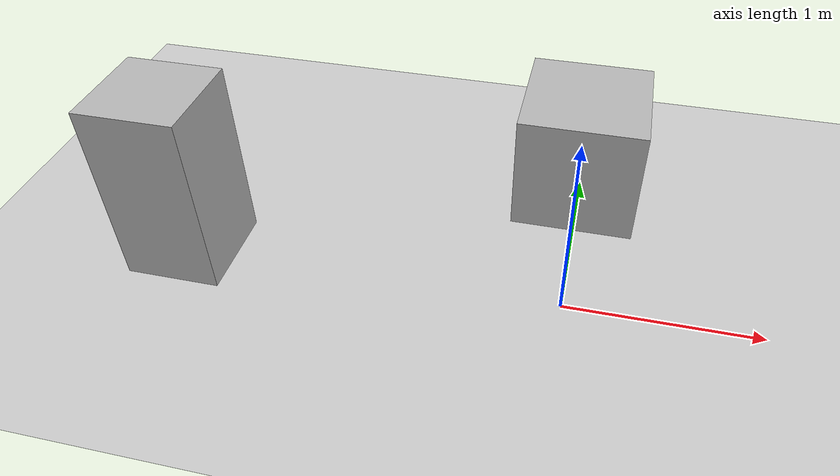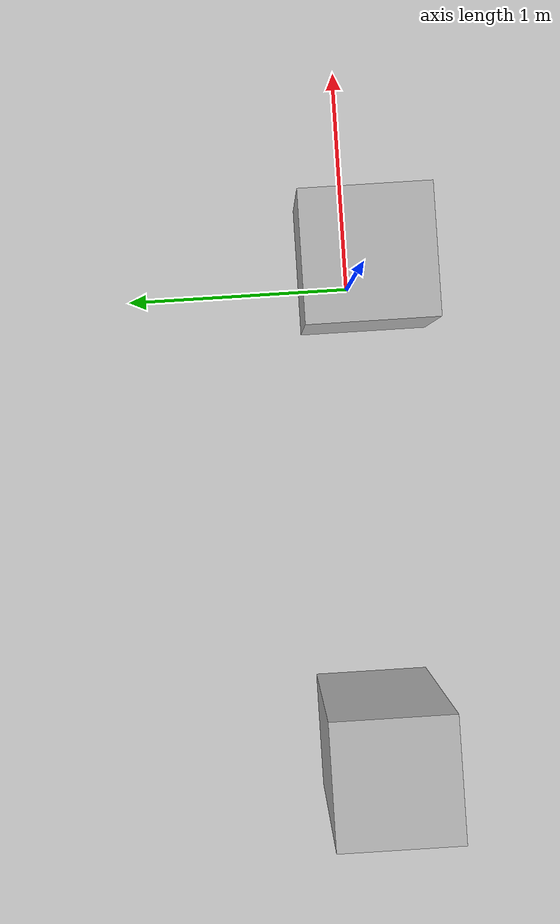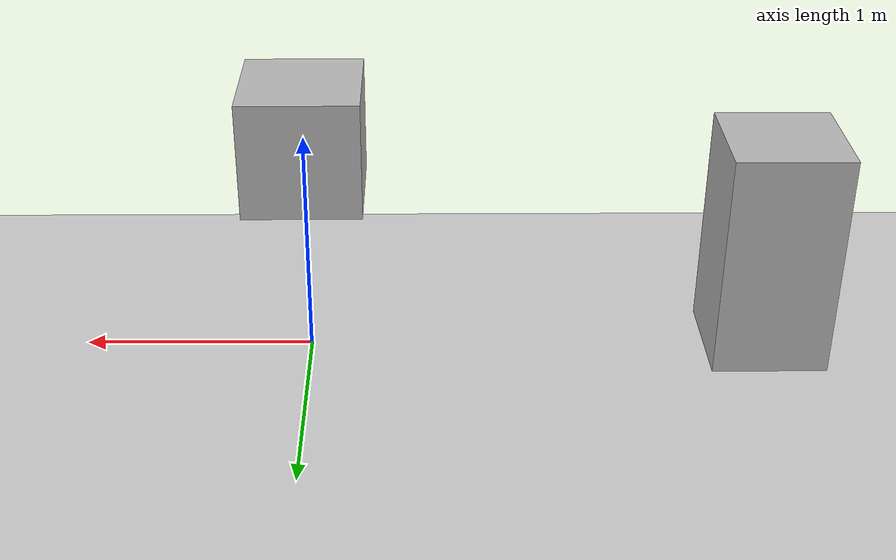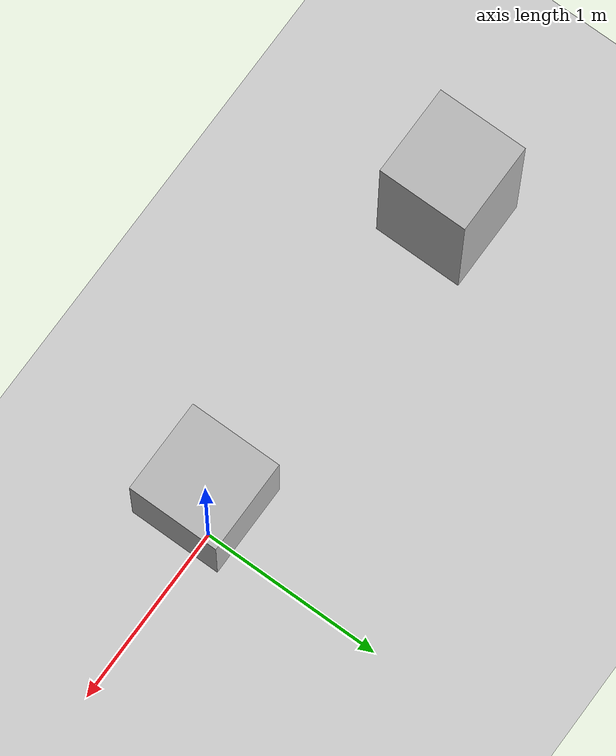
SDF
<?xml version="1.0" ?>
<sdf version="1.6">
  <world name="simple_humanoid_world">
    <!-- Physics engine configuration -->
    <physics name="default_physics" type="ode">
      <max_step_size>0.001</max_step_size>
      <real_time_factor>1</real_time_factor>
      <real_time_update_rate>1000</real_time_update_rate>
    </physics>

    <!-- Include ground plane -->
    <include>
      <uri>model://ground_plane</uri>
    </include>

    <!-- Include sun for lighting -->
    <include>
      <uri>model://sun</uri>
    </include>

    <!-- Simple humanoid model -->
    <model name="simple_humanoid">
      <pose>0 0 1.0 0 0 0</pose>
      <link name="base_link">
        <inertial>
          <mass>10.0</mass>
          <inertia>
            <ixx>0.4</ixx>
            <ixy>0.0</ixy>
            <ixz>0.0</ixz>
            <iyy>0.4</iyy>
            <iyz>0.0</iyz>
            <izz>0.4</izz>
          </inertia>
        </inertial>
        <visual name="visual">
          <geometry>
            <box>
              <size>0.5 0.5 0.5</size>
            </box>
          </geometry>
        </visual>
        <collision name="collision">
          <geometry>
            <box>
              <size>0.5 0.5 0.5</size>
            </box>
          </geometry>
        </collision>
      </link>
    </model>

    <!-- Add some simple obstacles for the robot to navigate around -->
    <model name="obstacle_1">
      <pose>-2 0 0.5 0 0 0</pose>
      <link name="link">
        <inertial>
          <mass>1.0</mass>
          <inertia>
            <ixx>0.1</ixx>
            <ixy>0.0</ixy>
            <ixz>0.0</ixz>
            <iyy>0.1</iyy>
            <iyz>0.0</iyz>
            <izz>0.1</izz>
          </inertia>
        </inertial>
        <visual name="visual">
          <geometry>
            <box>
              <size>0.5 0.5 1.0</size>
            </box>
          </geometry>
        </visual>
        <collision name="collision">
          <geometry>
            <box>
              <size>0.5 0.5 1.0</size>
            </box>
          </geometry>
        </collision>
      </link>
    </model>
  </world>
</sdf>
